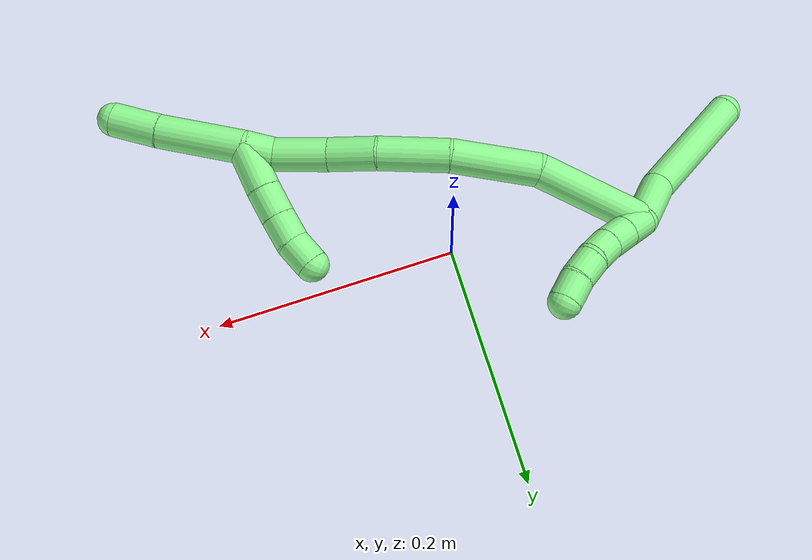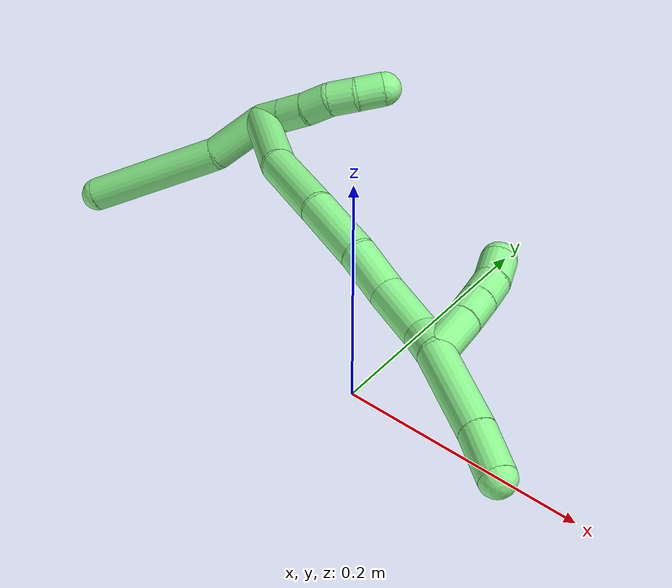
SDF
<sdf version="1.7">
 <world name="default">
  <model name="photoneo_s_sensor">
   <static>1</static>
   <pose>0 0 2 1.57079 1.57079 3.14159</pose>
   <link name="link">
    <inertial><mass>0.1</mass></inertial>
    <sensor name="sensor" type="depth">
     <update_rate>30</update_rate>
     <camera>
      <horizontal_fov>1.22</horizontal_fov>
      <image><width>1920</width><height>1200</height><format>B8G8R8</format></image>
      <clip><near>0.1</near><far>4</far></clip>
      <depth_camera><output>points</output></depth_camera>
     </camera>
     <plugin name="camera_plugin" filename="libgazebo_ros_depth_camera.so">
      <baseline>0.2</baseline>
      <alwaysOn>1</alwaysOn>
      <updateRate>0.0</updateRate>
      <cameraName>camera_ir</cameraName>
      <imageTopicName>/camera/color/image_raw</imageTopicName>
      <cameraInfoTopicName>/camera/color/camera_info</cameraInfoTopicName>
      <depthImageTopicName>/camera/depth/image_raw</depthImageTopicName>
      <depthImageCameraInfoTopicName>/camera/depth/camera_info</depthImageCameraInfoTopicName>
      <pointCloudTopicName>/camera/depth/points</pointCloudTopicName>
      <frameName>fr_optical</frameName>
      <pointCloudCutoff>0.1</pointCloudCutoff>
      <pointCloudCutoffMax>2.0</pointCloudCutoffMax>
      <distortionK1>0</distortionK1>
      <distortionK2>0</distortionK2>
      <distortionK3>0</distortionK3>
      <distortionT1>0</distortionT1>
      <distortionT2>0</distortionT2>
      <CxPrime>0</CxPrime>
      <Cx>0</Cx>
      <Cy>0</Cy>
      <focalLength>0</focalLength>
      <hackBaseline>0</hackBaseline>
     </plugin>
    </sensor>
   </link>
  </model>
  <model name="bin">
   <static>1</static>
   <link name="bottom">
    <collision name="collision-bottom">
     <pose>0 0 -0.01 0 -0 0</pose>
     <geometry><box><size>0.8 0.6 0.02</size></box></geometry>
     <surface>
      <friction><ode><mu>100</mu><mu2>100</mu2></ode></friction>
      <contact><collide_bitmask>65535</collide_bitmask></contact>
     </surface>
    </collision>
   </link>
   <link name="west_wall">
    <collision name="collision-west_wall">
     <pose>-0.41 0 0.1 0 -0 0</pose>
     <geometry><box><size>0.02 0.6 0.2</size></box></geometry>
     <surface>
      <friction><ode><mu>100</mu><mu2>100</mu2></ode></friction>
      <contact><collide_bitmask>65535</collide_bitmask></contact>
     </surface>
    </collision>
   </link>
   <link name="east_wall">
    <collision name="collision-east_wall">
     <pose>0.41 0 0.1 0 -0 0</pose>
     <geometry><box><size>0.02 0.6 0.2</size></box></geometry>
     <surface>
      <friction><ode><mu>100</mu><mu2>100</mu2></ode></friction>
      <contact><collide_bitmask>65535</collide_bitmask></contact>
     </surface>
    </collision>
   </link>
   <link name="south_wall">
    <collision name="collision-south_wall">
     <pose>0 -0.31 0.1 0 -0 0</pose>
     <geometry><box><size>0.8 0.02 0.2</size></box></geometry>
     <surface>
      <friction><ode><mu>100</mu><mu2>100</mu2></ode></friction>
      <contact><collide_bitmask>65535</collide_bitmask></contact>
     </surface>
    </collision>
   </link>
   <link name="north_wall">
    <collision name="collision-north_wall">
     <pose>0 0.31 0.1 0 -0 0</pose>
     <geometry><box><size>0.8 0.02 0.2</size></box></geometry>
     <surface>
      <friction><ode><mu>100</mu><mu2>100</mu2></ode></friction>
      <contact><collide_bitmask>65535</collide_bitmask></contact>
     </surface>
    </collision>
   </link>
  </model>
  <model name="13">
   <static>0</static>
   <link name="13">
    <collision name="collision-cylinder-e_1_2_8">
     <pose>-0.009724 -0.019543 -0.002862 1.71622 -0.457466 -0.526282</pose>
     <geometry><cylinder><radius>0.0125</radius><length>0.04403</length></cylinder></geometry>
     <surface>
      <friction><ode><mu>1.16</mu><mu2>1.16</mu2><slip1>0</slip1><slip2>0</slip2></ode></friction>
      <contact><ode><kp>1e+06</kp><kd>1</kd><max_vel>0</max_vel><min_depth>0.001</min_depth></ode></contact>
     </surface>
    </collision>
    <visual name="visual-cylinder-e_1_2_8">
     <pose>-0.009724 -0.019543 -0.002862 1.71622 -0.457466 -0.526282</pose>
     <geometry><cylinder><radius>0.0125</radius><length>0.04403</length></cylinder></geometry>
     <material><ambient>0.564706 0.984314 0.572549 1</ambient></material>
    </visual>
    <collision name="collision-cylinder-e_2_8_6">
     <pose>-0.050899 -0.078493 -0.022011 1.96271 -0.635517 -0.914163</pose>
     <geometry><cylinder><radius>0.0125</radius><length>0.10597</length></cylinder></geometry>
     <surface>
      <friction><ode><mu>1.16</mu><mu2>1.16</mu2><slip1>0</slip1><slip2>0</slip2></ode></friction>
      <contact><ode><kp>1e+06</kp><kd>1</kd><max_vel>0</max_vel><min_depth>0.001</min_depth></ode></contact>
     </surface>
    </collision>
    <visual name="visual-cylinder-e_2_8_6">
     <pose>-0.050899 -0.078493 -0.022011 1.96271 -0.635517 -0.914163</pose>
     <geometry><cylinder><radius>0.0125</radius><length>0.10597</length></cylinder></geometry>
     <material><ambient>0.564706 0.984314 0.572549 1</ambient></material>
    </visual>
    <collision name="collision-cylinder-e_1_2_9">
     <pose>0.005245 0.007094 0.004709 -0.984765 0.552075 -0.301614</pose>
     <geometry><cylinder><radius>0.0125</radius><length>0.02</length></cylinder></geometry>
     <surface>
      <friction><ode><mu>1.16</mu><mu2>1.16</mu2><slip1>0</slip1><slip2>0</slip2></ode></friction>
      <contact><ode><kp>1e+06</kp><kd>1</kd><max_vel>0</max_vel><min_depth>0.001</min_depth></ode></contact>
     </surface>
    </collision>
    <visual name="visual-cylinder-e_1_2_9">
     <pose>0.005245 0.007094 0.004709 -0.984765 0.552075 -0.301614</pose>
     <geometry><cylinder><radius>0.0125</radius><length>0.02</length></cylinder></geometry>
     <material><ambient>0.564706 0.984314 0.572549 1</ambient></material>
    </visual>
    <collision name="collision-cylinder-e_2_9_10">
     <pose>0.015773 0.021294 0.014062 -0.992004 0.556758 -0.306875</pose>
     <geometry><cylinder><radius>0.0125</radius><length>0.02</length></cylinder></geometry>
     <surface>
      <friction><ode><mu>1.16</mu><mu2>1.16</mu2><slip1>0</slip1><slip2>0</slip2></ode></friction>
      <contact><ode><kp>1e+06</kp><kd>1</kd><max_vel>0</max_vel><min_depth>0.001</min_depth></ode></contact>
     </surface>
    </collision>
    <visual name="visual-cylinder-e_2_9_10">
     <pose>0.015773 0.021294 0.014062 -0.992004 0.556758 -0.306875</pose>
     <geometry><cylinder><radius>0.0125</radius><length>0.02</length></cylinder></geometry>
     <material><ambient>0.564706 0.984314 0.572549 1</ambient></material>
    </visual>
    <collision name="collision-cylinder-e_3_10_11">
     <pose>0.026222 0.036188 0.02227 -1.14151 0.542634 -0.353471</pose>
     <geometry><cylinder><radius>0.0125</radius><length>0.02</length></cylinder></geometry>
     <surface>
      <friction><ode><mu>1.16</mu><mu2>1.16</mu2><slip1>0</slip1><slip2>0</slip2></ode></friction>
      <contact><ode><kp>1e+06</kp><kd>1</kd><max_vel>0</max_vel><min_depth>0.001</min_depth></ode></contact>
     </surface>
    </collision>
    <visual name="visual-cylinder-e_3_10_11">
     <pose>0.026222 0.036188 0.02227 -1.14151 0.542634 -0.353471</pose>
     <geometry><cylinder><radius>0.0125</radius><length>0.02</length></cylinder></geometry>
     <material><ambient>0.564706 0.984314 0.572549 1</ambient></material>
    </visual>
    <collision name="collision-cylinder-e_4_11_12">
     <pose>0.038776 0.050204 0.028399 -1.18024 0.831632 -0.575064</pose>
     <geometry><cylinder><radius>0.0125</radius><length>0.02</length></cylinder></geometry>
     <surface>
      <friction><ode><mu>1.16</mu><mu2>1.16</mu2><slip1>0</slip1><slip2>0</slip2></ode></friction>
      <contact><ode><kp>1e+06</kp><kd>1</kd><max_vel>0</max_vel><min_depth>0.001</min_depth></ode></contact>
     </surface>
    </collision>
    <visual name="visual-cylinder-e_4_11_12">
     <pose>0.038776 0.050204 0.028399 -1.18024 0.831632 -0.575064</pose>
     <geometry><cylinder><radius>0.0125</radius><length>0.02</length></cylinder></geometry>
     <material><ambient>0.564706 0.984314 0.572549 1</ambient></material>
    </visual>
    <collision name="collision-cylinder-e_5_12_5">
     <pose>0.054302 0.062188 0.031796 -1.42726 0.950238 -0.838074</pose>
     <geometry><cylinder><radius>0.0125</radius><length>0.02</length></cylinder></geometry>
     <surface>
      <friction><ode><mu>1.16</mu><mu2>1.16</mu2><slip1>0</slip1><slip2>0</slip2></ode></friction>
      <contact><ode><kp>1e+06</kp><kd>1</kd><max_vel>0</max_vel><min_depth>0.001</min_depth></ode></contact>
     </surface>
    </collision>
    <visual name="visual-cylinder-e_5_12_5">
     <pose>0.054302 0.062188 0.031796 -1.42726 0.950238 -0.838074</pose>
     <geometry><cylinder><radius>0.0125</radius><length>0.02</length></cylinder></geometry>
     <material><ambient>0.564706 0.984314 0.572549 1</ambient></material>
    </visual>
    <collision name="collision-cylinder-e_1_2_13">
     <pose>-0.000997 0.00406 0.042318 -0.095643 -0.023436 0.001122</pose>
     <geometry><cylinder><radius>0.0125</radius><length>0.085048</length></cylinder></geometry>
     <surface>
      <friction><ode><mu>1.16</mu><mu2>1.16</mu2><slip1>0</slip1><slip2>0</slip2></ode></friction>
      <contact><ode><kp>1e+06</kp><kd>1</kd><max_vel>0</max_vel><min_depth>0.001</min_depth></ode></contact>
     </surface>
    </collision>
    <visual name="visual-cylinder-e_1_2_13">
     <pose>-0.000997 0.00406 0.042318 -0.095643 -0.023436 0.001122</pose>
     <geometry><cylinder><radius>0.0125</radius><length>0.085048</length></cylinder></geometry>
     <material><ambient>0.564706 0.984314 0.572549 1</ambient></material>
    </visual>
    <collision name="collision-cylinder-e_2_13_14">
     <pose>0.006502 0.011764 0.115798 -0.116431 0.264413 -0.0155</pose>
     <geometry><cylinder><radius>0.0125</radius><length>0.065008</length></cylinder></geometry>
     <surface>
      <friction><ode><mu>1.16</mu><mu2>1.16</mu2><slip1>0</slip1><slip2>0</slip2></ode></friction>
      <contact><ode><kp>1e+06</kp><kd>1</kd><max_vel>0</max_vel><min_depth>0.001</min_depth></ode></contact>
     </surface>
    </collision>
    <visual name="visual-cylinder-e_2_13_14">
     <pose>0.006502 0.011764 0.115798 -0.116431 0.264413 -0.0155</pose>
     <geometry><cylinder><radius>0.0125</radius><length>0.065008</length></cylinder></geometry>
     <material><ambient>0.564706 0.984314 0.572549 1</ambient></material>
    </visual>
    <collision name="collision-cylinder-e_3_14_15">
     <pose>0.025688 0.0155 0.170713 -0.003825 0.422936 -0.000821</pose>
     <geometry><cylinder><radius>0.0125</radius><length>0.052098</length></cylinder></geometry>
     <surface>
      <friction><ode><mu>1.16</mu><mu2>1.16</mu2><slip1>0</slip1><slip2>0</slip2></ode></friction>
      <contact><ode><kp>1e+06</kp><kd>1</kd><max_vel>0</max_vel><min_depth>0.001</min_depth></ode></contact>
     </surface>
    </collision>
    <visual name="visual-cylinder-e_3_14_15">
     <pose>0.025688 0.0155 0.170713 -0.003825 0.422936 -0.000821</pose>
     <geometry><cylinder><radius>0.0125</radius><length>0.052098</length></cylinder></geometry>
     <material><ambient>0.564706 0.984314 0.572549 1</ambient></material>
    </visual>
    <collision name="collision-cylinder-e_4_15_16">
     <pose>0.045071 0.013233 0.209942 0.15121 0.506851 0.039232</pose>
     <geometry><cylinder><radius>0.0125</radius><length>0.035811</length></cylinder></geometry>
     <surface>
      <friction><ode><mu>1.16</mu><mu2>1.16</mu2><slip1>0</slip1><slip2>0</slip2></ode></friction>
      <contact><ode><kp>1e+06</kp><kd>1</kd><max_vel>0</max_vel><min_depth>0.001</min_depth></ode></contact>
     </surface>
    </collision>
    <visual name="visual-cylinder-e_4_15_16">
     <pose>0.045071 0.013233 0.209942 0.15121 0.506851 0.039232</pose>
     <geometry><cylinder><radius>0.0125</radius><length>0.035811</length></cylinder></geometry>
     <material><ambient>0.564706 0.984314 0.572549 1</ambient></material>
    </visual>
    <collision name="collision-cylinder-e_5_16_17">
     <pose>0.062795 0.009995 0.243528 0.048549 0.462186 0.011426</pose>
     <geometry><cylinder><radius>0.0125</radius><length>0.040514</length></cylinder></geometry>
     <surface>
      <friction><ode><mu>1.16</mu><mu2>1.16</mu2><slip1>0</slip1><slip2>0</slip2></ode></friction>
      <contact><ode><kp>1e+06</kp><kd>1</kd><max_vel>0</max_vel><min_depth>0.001</min_depth></ode></contact>
     </surface>
    </collision>
    <visual name="visual-cylinder-e_5_16_17">
     <pose>0.062795 0.009995 0.243528 0.048549 0.462186 0.011426</pose>
     <geometry><cylinder><radius>0.0125</radius><length>0.040514</length></cylinder></geometry>
     <material><ambient>0.564706 0.984314 0.572549 1</ambient></material>
    </visual>
    <collision name="collision-cylinder-e_6_17_1">
     <pose>0.073925 0.009822 0.272169 -0.067092 0.196089 -0.006602</pose>
     <geometry><cylinder><radius>0.0125</radius><length>0.021522</length></cylinder></geometry>
     <surface>
      <friction><ode><mu>1.16</mu><mu2>1.16</mu2><slip1>0</slip1><slip2>0</slip2></ode></friction>
      <contact><ode><kp>1e+06</kp><kd>1</kd><max_vel>0</max_vel><min_depth>0.001</min_depth></ode></contact>
     </surface>
    </collision>
    <visual name="visual-cylinder-e_6_17_1">
     <pose>0.073925 0.009822 0.272169 -0.067092 0.196089 -0.006602</pose>
     <geometry><cylinder><radius>0.0125</radius><length>0.021522</length></cylinder></geometry>
     <material><ambient>0.564706 0.984314 0.572549 1</ambient></material>
    </visual>
    <collision name="collision-cylinder-e_1_1_18">
     <pose>0.085459 0.005927 0.313184 0.149872 0.297072 0.022468</pose>
     <geometry><cylinder><radius>0.0125</radius><length>0.064483</length></cylinder></geometry>
     <surface>
      <friction><ode><mu>1.16</mu><mu2>1.16</mu2><slip1>0</slip1><slip2>0</slip2></ode></friction>
      <contact><ode><kp>1e+06</kp><kd>1</kd><max_vel>0</max_vel><min_depth>0.001</min_depth></ode></contact>
     </surface>
    </collision>
    <visual name="visual-cylinder-e_1_1_18">
     <pose>0.085459 0.005927 0.313184 0.149872 0.297072 0.022468</pose>
     <geometry><cylinder><radius>0.0125</radius><length>0.064483</length></cylinder></geometry>
     <material><ambient>0.564706 0.984314 0.572549 1</ambient></material>
    </visual>
    <collision name="collision-cylinder-e_2_18_4">
     <pose>0.099182 -0.001982 0.360582 0.192998 0.243682 0.023705</pose>
     <geometry><cylinder><radius>0.0125</radius><length>0.035517</length></cylinder></geometry>
     <surface>
      <friction><ode><mu>1.16</mu><mu2>1.16</mu2><slip1>0</slip1><slip2>0</slip2></ode></friction>
      <contact><ode><kp>1e+06</kp><kd>1</kd><max_vel>0</max_vel><min_depth>0.001</min_depth></ode></contact>
     </surface>
    </collision>
    <visual name="visual-cylinder-e_2_18_4">
     <pose>0.099182 -0.001982 0.360582 0.192998 0.243682 0.023705</pose>
     <geometry><cylinder><radius>0.0125</radius><length>0.035517</length></cylinder></geometry>
     <material><ambient>0.564706 0.984314 0.572549 1</ambient></material>
    </visual>
    <collision name="collision-cylinder-e_1_1_19">
     <pose>0.085324 0.017109 0.269946 -2.66537 0.575089 -1.76712</pose>
     <geometry><cylinder><radius>0.0125</radius><length>0.034205</length></cylinder></geometry>
     <surface>
      <friction><ode><mu>1.16</mu><mu2>1.16</mu2><slip1>0</slip1><slip2>0</slip2></ode></friction>
      <contact><ode><kp>1e+06</kp><kd>1</kd><max_vel>0</max_vel><min_depth>0.001</min_depth></ode></contact>
     </surface>
    </collision>
    <visual name="visual-cylinder-e_1_1_19">
     <pose>0.085324 0.017109 0.269946 -2.66537 0.575089 -1.76712</pose>
     <geometry><cylinder><radius>0.0125</radius><length>0.034205</length></cylinder></geometry>
     <material><ambient>0.564706 0.984314 0.572549 1</ambient></material>
    </visual>
    <collision name="collision-cylinder-e_2_19_20">
     <pose>0.100534 0.027655 0.24822 -2.72523 0.542106 -1.84165</pose>
     <geometry><cylinder><radius>0.0125</radius><length>0.022903</length></cylinder></geometry>
     <surface>
      <friction><ode><mu>1.16</mu><mu2>1.16</mu2><slip1>0</slip1><slip2>0</slip2></ode></friction>
      <contact><ode><kp>1e+06</kp><kd>1</kd><max_vel>0</max_vel><min_depth>0.001</min_depth></ode></contact>
     </surface>
    </collision>
    <visual name="visual-cylinder-e_2_19_20">
     <pose>0.100534 0.027655 0.24822 -2.72523 0.542106 -1.84165</pose>
     <geometry><cylinder><radius>0.0125</radius><length>0.022903</length></cylinder></geometry>
     <material><ambient>0.564706 0.984314 0.572549 1</ambient></material>
    </visual>
    <collision name="collision-cylinder-e_3_20_21">
     <pose>0.111773 0.035268 0.230614 -2.74213 0.517129 -1.83506</pose>
     <geometry><cylinder><radius>0.0125</radius><length>0.021564</length></cylinder></geometry>
     <surface>
      <friction><ode><mu>1.16</mu><mu2>1.16</mu2><slip1>0</slip1><slip2>0</slip2></ode></friction>
      <contact><ode><kp>1e+06</kp><kd>1</kd><max_vel>0</max_vel><min_depth>0.001</min_depth></ode></contact>
     </surface>
    </collision>
    <visual name="visual-cylinder-e_3_20_21">
     <pose>0.111773 0.035268 0.230614 -2.74213 0.517129 -1.83506</pose>
     <geometry><cylinder><radius>0.0125</radius><length>0.021564</length></cylinder></geometry>
     <material><ambient>0.564706 0.984314 0.572549 1</ambient></material>
    </visual>
    <collision name="collision-cylinder-e_4_21_3">
     <pose>0.120237 0.042635 0.21249 -2.76778 0.298303 -1.34287</pose>
     <geometry><cylinder><radius>0.0125</radius><length>0.021328</length></cylinder></geometry>
     <surface>
      <friction><ode><mu>1.16</mu><mu2>1.16</mu2><slip1>0</slip1><slip2>0</slip2></ode></friction>
      <contact><ode><kp>1e+06</kp><kd>1</kd><max_vel>0</max_vel><min_depth>0.001</min_depth></ode></contact>
     </surface>
    </collision>
    <visual name="visual-cylinder-e_4_21_3">
     <pose>0.120237 0.042635 0.21249 -2.76778 0.298303 -1.34287</pose>
     <geometry><cylinder><radius>0.0125</radius><length>0.021328</length></cylinder></geometry>
     <material><ambient>0.564706 0.984314 0.572549 1</ambient></material>
    </visual>
    <collision name="collision-sphere-3">
     <pose>0.123372 0.046357 0.203001 0 -0 0</pose>
     <geometry><sphere><radius>0.0125</radius></sphere></geometry>
     <surface>
      <friction><ode><mu>1.16</mu><mu2>1.16</mu2><slip1>0</slip1><slip2>0</slip2></ode></friction>
      <contact><ode><kp>1e+06</kp><kd>1</kd><max_vel>0</max_vel><min_depth>0.001</min_depth></ode></contact>
     </surface>
    </collision>
    <visual name="visual-sphere-3">
     <pose>0.123372 0.046357 0.203001 0 -0 0</pose>
     <geometry><sphere><radius>0.0125</radius></sphere></geometry>
     <material><ambient>0.564706 0.984314 0.572549 1</ambient></material>
    </visual>
    <collision name="collision-sphere-21">
     <pose>0.117103 0.038913 0.221979 0 -0 0</pose>
     <geometry><sphere><radius>0.0125</radius></sphere></geometry>
     <surface>
      <friction><ode><mu>1.16</mu><mu2>1.16</mu2><slip1>0</slip1><slip2>0</slip2></ode></friction>
      <contact><ode><kp>1e+06</kp><kd>1</kd><max_vel>0</max_vel><min_depth>0.001</min_depth></ode></contact>
     </surface>
    </collision>
    <visual name="visual-sphere-21">
     <pose>0.117103 0.038913 0.221979 0 -0 0</pose>
     <geometry><sphere><radius>0.0125</radius></sphere></geometry>
     <material><ambient>0.564706 0.984314 0.572549 1</ambient></material>
    </visual>
    <collision name="collision-sphere-20">
     <pose>0.106442 0.031623 0.239248 0 -0 0</pose>
     <geometry><sphere><radius>0.0125</radius></sphere></geometry>
     <surface>
      <friction><ode><mu>1.16</mu><mu2>1.16</mu2><slip1>0</slip1><slip2>0</slip2></ode></friction>
      <contact><ode><kp>1e+06</kp><kd>1</kd><max_vel>0</max_vel><min_depth>0.001</min_depth></ode></contact>
     </surface>
    </collision>
    <visual name="visual-sphere-20">
     <pose>0.106442 0.031623 0.239248 0 -0 0</pose>
     <geometry><sphere><radius>0.0125</radius></sphere></geometry>
     <material><ambient>0.564706 0.984314 0.572549 1</ambient></material>
    </visual>
    <collision name="collision-sphere-19">
     <pose>0.094626 0.023688 0.257191 0 -0 0</pose>
     <geometry><sphere><radius>0.0125</radius></sphere></geometry>
     <surface>
      <friction><ode><mu>1.16</mu><mu2>1.16</mu2><slip1>0</slip1><slip2>0</slip2></ode></friction>
      <contact><ode><kp>1e+06</kp><kd>1</kd><max_vel>0</max_vel><min_depth>0.001</min_depth></ode></contact>
     </surface>
    </collision>
    <visual name="visual-sphere-19">
     <pose>0.094626 0.023688 0.257191 0 -0 0</pose>
     <geometry><sphere><radius>0.0125</radius></sphere></geometry>
     <material><ambient>0.564706 0.984314 0.572549 1</ambient></material>
    </visual>
    <collision name="collision-sphere-11">
     <pose>0.031386 0.043974 0.025835 0 -0 0</pose>
     <geometry><sphere><radius>0.0125</radius></sphere></geometry>
     <surface>
      <friction><ode><mu>1.16</mu><mu2>1.16</mu2><slip1>0</slip1><slip2>0</slip2></ode></friction>
      <contact><ode><kp>1e+06</kp><kd>1</kd><max_vel>0</max_vel><min_depth>0.001</min_depth></ode></contact>
     </surface>
    </collision>
    <visual name="visual-sphere-11">
     <pose>0.031386 0.043974 0.025835 0 -0 0</pose>
     <geometry><sphere><radius>0.0125</radius></sphere></geometry>
     <material><ambient>0.564706 0.984314 0.572549 1</ambient></material>
    </visual>
    <collision name="collision-sphere-10">
     <pose>0.021058 0.028401 0.018706 0 -0 0</pose>
     <geometry><sphere><radius>0.0125</radius></sphere></geometry>
     <surface>
      <friction><ode><mu>1.16</mu><mu2>1.16</mu2><slip1>0</slip1><slip2>0</slip2></ode></friction>
      <contact><ode><kp>1e+06</kp><kd>1</kd><max_vel>0</max_vel><min_depth>0.001</min_depth></ode></contact>
     </surface>
    </collision>
    <visual name="visual-sphere-10">
     <pose>0.021058 0.028401 0.018706 0 -0 0</pose>
     <geometry><sphere><radius>0.0125</radius></sphere></geometry>
     <material><ambient>0.564706 0.984314 0.572549 1</ambient></material>
    </visual>
    <collision name="collision-sphere-6">
     <pose>-0.08235 -0.117901 -0.038298 0 -0 0</pose>
     <geometry><sphere><radius>0.0125</radius></sphere></geometry>
     <surface>
      <friction><ode><mu>1.16</mu><mu2>1.16</mu2><slip1>0</slip1><slip2>0</slip2></ode></friction>
      <contact><ode><kp>1e+06</kp><kd>1</kd><max_vel>0</max_vel><min_depth>0.001</min_depth></ode></contact>
     </surface>
    </collision>
    <visual name="visual-sphere-6">
     <pose>-0.08235 -0.117901 -0.038298 0 -0 0</pose>
     <geometry><sphere><radius>0.0125</radius></sphere></geometry>
     <material><ambient>0.564706 0.984314 0.572549 1</ambient></material>
    </visual>
    <collision name="collision-sphere-9">
     <pose>0.010489 0.014187 0.009418 0 -0 0</pose>
     <geometry><sphere><radius>0.0125</radius></sphere></geometry>
     <surface>
      <friction><ode><mu>1.16</mu><mu2>1.16</mu2><slip1>0</slip1><slip2>0</slip2></ode></friction>
      <contact><ode><kp>1e+06</kp><kd>1</kd><max_vel>0</max_vel><min_depth>0.001</min_depth></ode></contact>
     </surface>
    </collision>
    <visual name="visual-sphere-9">
     <pose>0.010489 0.014187 0.009418 0 -0 0</pose>
     <geometry><sphere><radius>0.0125</radius></sphere></geometry>
     <material><ambient>0.564706 0.984314 0.572549 1</ambient></material>
    </visual>
    <collision name="collision-sphere-2">
     <geometry><sphere><radius>0.0125</radius></sphere></geometry>
     <surface>
      <friction><ode><mu>1.16</mu><mu2>1.16</mu2><slip1>0</slip1><slip2>0</slip2></ode></friction>
      <contact><ode><kp>1e+06</kp><kd>1</kd><max_vel>0</max_vel><min_depth>0.001</min_depth></ode></contact>
     </surface>
    </collision>
    <visual name="visual-sphere-2">
     <geometry><sphere><radius>0.0125</radius></sphere></geometry>
     <material><ambient>0.564706 0.984314 0.572549 1</ambient></material>
    </visual>
    <collision name="collision-sphere-8">
     <pose>-0.019447 -0.039086 -0.005724 0 -0 0</pose>
     <geometry><sphere><radius>0.0125</radius></sphere></geometry>
     <surface>
      <friction><ode><mu>1.16</mu><mu2>1.16</mu2><slip1>0</slip1><slip2>0</slip2></ode></friction>
      <contact><ode><kp>1e+06</kp><kd>1</kd><max_vel>0</max_vel><min_depth>0.001</min_depth></ode></contact>
     </surface>
    </collision>
    <visual name="visual-sphere-8">
     <pose>-0.019447 -0.039086 -0.005724 0 -0 0</pose>
     <geometry><sphere><radius>0.0125</radius></sphere></geometry>
     <material><ambient>0.564706 0.984314 0.572549 1</ambient></material>
    </visual>
    <collision name="collision-sphere-12">
     <pose>0.046166 0.056433 0.030964 0 -0 0</pose>
     <geometry><sphere><radius>0.0125</radius></sphere></geometry>
     <surface>
      <friction><ode><mu>1.16</mu><mu2>1.16</mu2><slip1>0</slip1><slip2>0</slip2></ode></friction>
      <contact><ode><kp>1e+06</kp><kd>1</kd><max_vel>0</max_vel><min_depth>0.001</min_depth></ode></contact>
     </surface>
    </collision>
    <visual name="visual-sphere-12">
     <pose>0.046166 0.056433 0.030964 0 -0 0</pose>
     <geometry><sphere><radius>0.0125</radius></sphere></geometry>
     <material><ambient>0.564706 0.984314 0.572549 1</ambient></material>
    </visual>
    <collision name="collision-sphere-5">
     <pose>0.062437 0.067943 0.032628 0 -0 0</pose>
     <geometry><sphere><radius>0.0125</radius></sphere></geometry>
     <surface>
      <friction><ode><mu>1.16</mu><mu2>1.16</mu2><slip1>0</slip1><slip2>0</slip2></ode></friction>
      <contact><ode><kp>1e+06</kp><kd>1</kd><max_vel>0</max_vel><min_depth>0.001</min_depth></ode></contact>
     </surface>
    </collision>
    <visual name="visual-sphere-5">
     <pose>0.062437 0.067943 0.032628 0 -0 0</pose>
     <geometry><sphere><radius>0.0125</radius></sphere></geometry>
     <material><ambient>0.564706 0.984314 0.572549 1</ambient></material>
    </visual>
    <collision name="collision-sphere-13">
     <pose>-0.001993 0.00812 0.084636 0 -0 0</pose>
     <geometry><sphere><radius>0.0125</radius></sphere></geometry>
     <surface>
      <friction><ode><mu>1.16</mu><mu2>1.16</mu2><slip1>0</slip1><slip2>0</slip2></ode></friction>
      <contact><ode><kp>1e+06</kp><kd>1</kd><max_vel>0</max_vel><min_depth>0.001</min_depth></ode></contact>
     </surface>
    </collision>
    <visual name="visual-sphere-13">
     <pose>-0.001993 0.00812 0.084636 0 -0 0</pose>
     <geometry><sphere><radius>0.0125</radius></sphere></geometry>
     <material><ambient>0.564706 0.984314 0.572549 1</ambient></material>
    </visual>
    <collision name="collision-sphere-14">
     <pose>0.014996 0.015409 0.146959 0 -0 0</pose>
     <geometry><sphere><radius>0.0125</radius></sphere></geometry>
     <surface>
      <friction><ode><mu>1.16</mu><mu2>1.16</mu2><slip1>0</slip1><slip2>0</slip2></ode></friction>
      <contact><ode><kp>1e+06</kp><kd>1</kd><max_vel>0</max_vel><min_depth>0.001</min_depth></ode></contact>
     </surface>
    </collision>
    <visual name="visual-sphere-14">
     <pose>0.014996 0.015409 0.146959 0 -0 0</pose>
     <geometry><sphere><radius>0.0125</radius></sphere></geometry>
     <material><ambient>0.564706 0.984314 0.572549 1</ambient></material>
    </visual>
    <collision name="collision-sphere-15">
     <pose>0.036379 0.015591 0.194466 0 -0 0</pose>
     <geometry><sphere><radius>0.0125</radius></sphere></geometry>
     <surface>
      <friction><ode><mu>1.16</mu><mu2>1.16</mu2><slip1>0</slip1><slip2>0</slip2></ode></friction>
      <contact><ode><kp>1e+06</kp><kd>1</kd><max_vel>0</max_vel><min_depth>0.001</min_depth></ode></contact>
     </surface>
    </collision>
    <visual name="visual-sphere-15">
     <pose>0.036379 0.015591 0.194466 0 -0 0</pose>
     <geometry><sphere><radius>0.0125</radius></sphere></geometry>
     <material><ambient>0.564706 0.984314 0.572549 1</ambient></material>
    </visual>
    <collision name="collision-sphere-16">
     <pose>0.053763 0.010875 0.225418 0 -0 0</pose>
     <geometry><sphere><radius>0.0125</radius></sphere></geometry>
     <surface>
      <friction><ode><mu>1.16</mu><mu2>1.16</mu2><slip1>0</slip1><slip2>0</slip2></ode></friction>
      <contact><ode><kp>1e+06</kp><kd>1</kd><max_vel>0</max_vel><min_depth>0.001</min_depth></ode></contact>
     </surface>
    </collision>
    <visual name="visual-sphere-16">
     <pose>0.053763 0.010875 0.225418 0 -0 0</pose>
     <geometry><sphere><radius>0.0125</radius></sphere></geometry>
     <material><ambient>0.564706 0.984314 0.572549 1</ambient></material>
    </visual>
    <collision name="collision-sphere-17">
     <pose>0.071828 0.009115 0.261638 0 -0 0</pose>
     <geometry><sphere><radius>0.0125</radius></sphere></geometry>
     <surface>
      <friction><ode><mu>1.16</mu><mu2>1.16</mu2><slip1>0</slip1><slip2>0</slip2></ode></friction>
      <contact><ode><kp>1e+06</kp><kd>1</kd><max_vel>0</max_vel><min_depth>0.001</min_depth></ode></contact>
     </surface>
    </collision>
    <visual name="visual-sphere-17">
     <pose>0.071828 0.009115 0.261638 0 -0 0</pose>
     <geometry><sphere><radius>0.0125</radius></sphere></geometry>
     <material><ambient>0.564706 0.984314 0.572549 1</ambient></material>
    </visual>
    <collision name="collision-sphere-1">
     <pose>0.076021 0.01053 0.2827 0 -0 0</pose>
     <geometry><sphere><radius>0.0125</radius></sphere></geometry>
     <surface>
      <friction><ode><mu>1.16</mu><mu2>1.16</mu2><slip1>0</slip1><slip2>0</slip2></ode></friction>
      <contact><ode><kp>1e+06</kp><kd>1</kd><max_vel>0</max_vel><min_depth>0.001</min_depth></ode></contact>
     </surface>
    </collision>
    <visual name="visual-sphere-1">
     <pose>0.076021 0.01053 0.2827 0 -0 0</pose>
     <geometry><sphere><radius>0.0125</radius></sphere></geometry>
     <material><ambient>0.564706 0.984314 0.572549 1</ambient></material>
    </visual>
    <collision name="collision-sphere-18">
     <pose>0.094897 0.001324 0.343668 0 -0 0</pose>
     <geometry><sphere><radius>0.0125</radius></sphere></geometry>
     <surface>
      <friction><ode><mu>1.16</mu><mu2>1.16</mu2><slip1>0</slip1><slip2>0</slip2></ode></friction>
      <contact><ode><kp>1e+06</kp><kd>1</kd><max_vel>0</max_vel><min_depth>0.001</min_depth></ode></contact>
     </surface>
    </collision>
    <visual name="visual-sphere-18">
     <pose>0.094897 0.001324 0.343668 0 -0 0</pose>
     <geometry><sphere><radius>0.0125</radius></sphere></geometry>
     <material><ambient>0.564706 0.984314 0.572549 1</ambient></material>
    </visual>
    <collision name="collision-sphere-4">
     <pose>0.103466 -0.005287 0.377495 0 -0 0</pose>
     <geometry><sphere><radius>0.0125</radius></sphere></geometry>
     <surface>
      <friction><ode><mu>1.16</mu><mu2>1.16</mu2><slip1>0</slip1><slip2>0</slip2></ode></friction>
      <contact><ode><kp>1e+06</kp><kd>1</kd><max_vel>0</max_vel><min_depth>0.001</min_depth></ode></contact>
     </surface>
    </collision>
    <visual name="visual-sphere-4">
     <pose>0.103466 -0.005287 0.377495 0 -0 0</pose>
     <geometry><sphere><radius>0.0125</radius></sphere></geometry>
     <material><ambient>0.564706 0.984314 0.572549 1</ambient></material>
    </visual>
    <inertial>
     <pose>0.031518 0.000759 0.133672 0 -0 0</pose>
     <mass>0.75</mass>
     <inertia>
      <ixx>0.000125</ixx>
      <ixy>0</ixy>
      <ixz>0</ixz>
      <iyy>8.5e-05</iyy>
      <iyz>0</iyz>
      <izz>0.000127</izz>
     </inertia>
    </inertial>
   </link>
   <pose>-0.12751 0.051342 0.16485 1.39017 0.450342 0.75894</pose>
  </model>
 </world>
</sdf>
